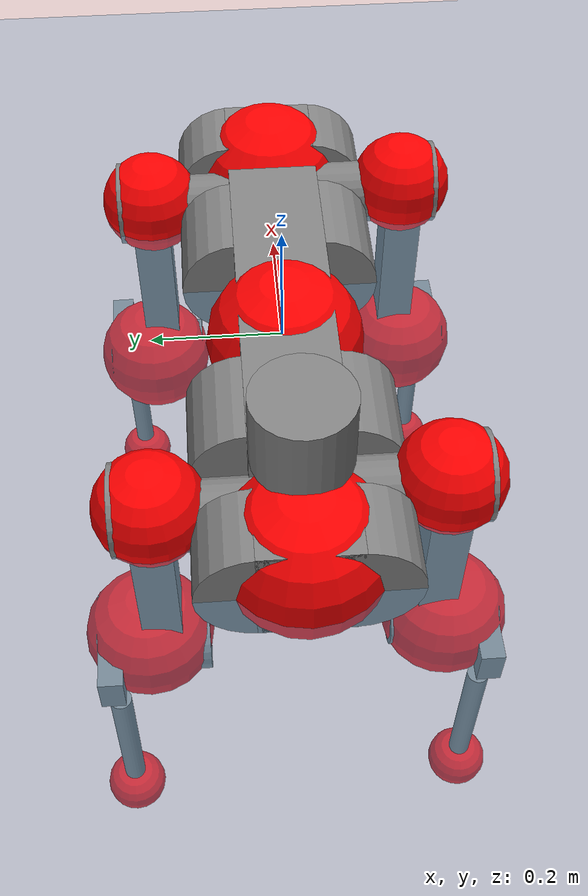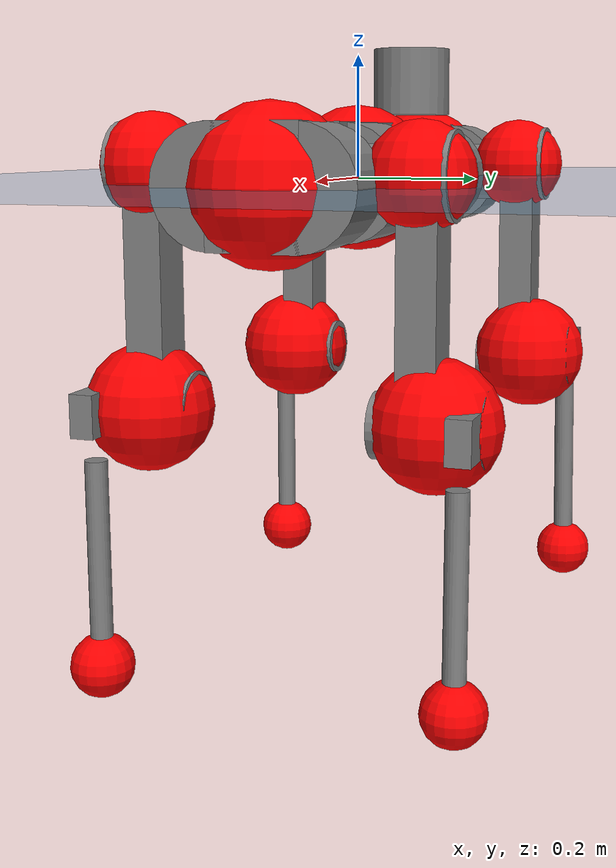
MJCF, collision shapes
<mujoco model="anymal_c">
  <compiler angle="radian" assetdir="assets" balanceinertia="true" inertiafromgeom="false"/>

  <option timestep="0.005" density="1.2" viscosity="2e-05"/>

  <size nkey="1"/>

  <visual>
    <quality shadowsize="8192"/>
    <map shadowclip="0.5"/>
  </visual>

  <default>
    <default class="/">
      <material specular="0" shininess="0.25"/>
      <geom contype="0" conaffinity="0" group="1" solref="-1000 -80"/>
      <site size="0.01 0.005 0.005" group="5"/>
      <general forcelimited="true" forcerange="-80 80" biastype="affine" gainprm="80" biasprm="0 -80 -2"/>
      <default class="anymal_c">
        <joint armature="0.01" damping="0.01" frictionloss="0.1"/>
        <default class="visual">
          <geom type="mesh" group="2"/>
          <default class="visual_zflip"/>
        </default>
        <default class="collision">
          <geom type="cylinder" group="3"/>
          <default class="foot">
            <geom size="0.03 0 0" type="sphere" condim="6" priority="1" friction="0.8 0.02 0.01" solimp="0.015 1 0.03"/>
          </default>
        </default>
      </default>
      <default class="reward_collision_sphere">
        <geom group="5" rgba="1 0 0 1"/>
      </default>
    </default>
  </default>

  <asset>
    <texture type="skybox" colorspace="auto" name="//unnamed_texture_0" builtin="gradient" rgb1="0.95 0.95 0.95" rgb2="0.95 0.95 0.95" width="100" height="600"/>
    <texture type="2d" colorspace="auto" name="texplane" builtin="checker" rgb1="0.345 0.575 0.748" rgb2="0.345 0.575 0.748" markrgb="1 1 1" width="512" height="512"/>
    <texture type="2d" colorspace="linear" name="base" file="base.png"/>
    <texture type="2d" colorspace="linear" name="top_shell" file="top_shell.png"/>
    <texture type="2d" colorspace="linear" name="bottom_shell" file="bottom_shell.png"/>
    <texture type="2d" colorspace="linear" name="remote" file="remote.png"/>
    <texture type="2d" colorspace="linear" name="hatch" file="hatch.png"/>
    <texture type="2d" colorspace="linear" name="handle" file="handle.png"/>
    <texture type="2d" colorspace="linear" name="face" file="face.png"/>
    <texture type="2d" colorspace="linear" name="battery" file="battery.png"/>
    <texture type="2d" colorspace="linear" name="lidar_cage" file="lidar_cage.png"/>
    <texture type="2d" colorspace="linear" name="depth_camera" file="depth_camera.png"/>
    <texture type="2d" colorspace="linear" name="wide_angle_camera" file="wide_angle_camera.png"/>
    <texture type="2d" colorspace="linear" name="lidar" file="lidar.png"/>
    <texture type="2d" colorspace="linear" name="drive" file="drive.png"/>
    <texture type="2d" colorspace="linear" name="hip_l" file="hip_l.png"/>
    <texture type="2d" colorspace="linear" name="shank_l" file="shank_l.png"/>
    <texture type="2d" colorspace="linear" name="foot" file="foot.png"/>
    <texture type="2d" colorspace="linear" name="thigh" file="thigh.png"/>
    <texture type="2d" colorspace="linear" name="shank_r" file="shank_r.png"/>
    <texture type="2d" colorspace="linear" name="hip_r" file="hip_r.png"/>
    <material name="MatPlane" class="/" texture="texplane" texuniform="true" texrepeat="2 2" specular="0.9" shininess="0.5"/>
    <material name="black_plastic" class="/" rgba="0.007 0.007 0.007 1"/>
    <material name="green" class="/" rgba="0.052 0.178 0.033 1"/>
    <material name="red" class="/" rgba="0.178 0.006 0.005 1"/>
    <material name="yellow" class="/" rgba="0.178 0.119 0.006 1"/>
    <material name="lwl" class="/" rgba="0.8 0.8 0.8 1"/>
    <material name="base" class="/" texture="base"/>
    <material name="top_shell" class="/" texture="top_shell"/>
    <material name="bottom_shell" class="/" texture="bottom_shell"/>
    <material name="hip_l" class="/" texture="hip_l"/>
    <material name="thigh" class="/" texture="thigh"/>
    <material name="shank_l" class="/" texture="shank_l"/>
    <material name="foot" class="/" texture="foot"/>
    <material name="hip_r" class="/" texture="hip_r"/>
    <material name="shank" class="/" texture="shank_r"/>
    <material name="hatch" class="/" texture="hatch"/>
    <material name="remote" class="/" texture="remote"/>
    <material name="handle" class="/" texture="handle"/>
    <material name="face" class="/" texture="face"/>
    <material name="depth_camera" class="/" texture="depth_camera"/>
    <material name="wide_angle_camera" class="/" texture="wide_angle_camera"/>
    <material name="battery" class="/" texture="battery"/>
    <material name="lidar_cage" class="/" texture="lidar_cage"/>
    <material name="lidar" class="/" texture="lidar"/>
    <material name="drive" class="/" texture="drive"/>
    <mesh name="base_0" class="/" file="base_0.obj"/>
    <mesh name="base_1" class="/" file="base_1.obj"/>
    <mesh name="base_2" class="/" file="base_2.obj"/>
    <mesh name="base_3" class="/" file="base_3.obj"/>
    <mesh name="base_4" class="/" file="base_4.obj"/>
    <mesh name="base_5" class="/" file="base_5.obj"/>
    <mesh name="top_shell" class="/" file="top_shell.obj"/>
    <mesh name="bottom_shell" class="/" file="bottom_shell.obj"/>
    <mesh name="remote" class="/" file="remote.obj"/>
    <mesh name="handle" class="/" file="handle.obj"/>
    <mesh name="face" class="/" file="face.obj"/>
    <mesh name="wide_angle_camera" class="/" file="wide_angle_camera.obj"/>
    <mesh name="depth_camera" class="/" file="depth_camera.obj"/>
    <mesh name="battery" class="/" file="battery.obj"/>
    <mesh name="lidar_cage" class="/" file="lidar_cage.obj"/>
    <mesh name="lidar" class="/" file="lidar.obj"/>
    <mesh name="drive" class="/" file="drive.obj"/>
    <mesh name="hip_l" class="/" file="hip_l.obj"/>
    <mesh name="thigh" class="/" file="thigh.obj"/>
    <mesh name="shank_l" class="/" file="shank_l.obj"/>
    <mesh name="foot" class="/" file="foot.obj"/>
    <mesh name="hip_r" class="/" file="hip_r.obj"/>
    <mesh name="hatch" class="/" file="hatch.obj"/>
    <mesh name="shank_r" class="/" file="shank_r.obj"/>
  </asset>

  <worldbody>
    <geom name="floor" class="/" size="100 100 0.125" type="plane" group="0" material="MatPlane"/>
    <light name="toplight_shadow" class="/" pos="0 0 5" dir="0.0990148 0.0990148 -0.990148" type="directional" ambient="0.04 0.04 0.04" diffuse="0.55 0.55 0.55" specular="0.12 0.12 0.12"/>
    <light name="toplight_fill" class="/" pos="0 0 5" dir="0.0990148 0.0990148 -0.990148" type="directional" castshadow="false" ambient="0.04 0.04 0.04" diffuse="0.3 0.3 0.3" specular="0.08 0.08 0.08"/>
    <body name="trunk" childclass="anymal_c" pos="-0.0106218 -0.00395002 -0.000604034" quat="1 -0.000162092 -0.000824237 0.000480126">
      <inertial pos="0.00156057 -0.0008341 0.0603134" quat="0.523684 0.493168 0.49673 0.485592" mass="19.8013" diaginertia="0.214909 0.304654 0.694004"/>
      <joint name="//unnamed_joint_0" type="free" armature="0" damping="0" frictionloss="0"/>
      <geom name="//unnamed_geom_1" class="visual" material="green" mesh="base_0"/>
      <geom name="//unnamed_geom_2" class="visual" material="yellow" mesh="base_1"/>
      <geom name="//unnamed_geom_3" class="visual" material="red" mesh="base_2"/>
      <geom name="//unnamed_geom_4" class="visual" material="black_plastic" mesh="base_3"/>
      <geom name="//unnamed_geom_5" class="visual" material="lwl" mesh="base_4"/>
      <geom name="//unnamed_geom_6" class="visual" material="base" mesh="base_5"/>
      <geom name="trunk_1" class="collision" size="0.292137 0.0705159 0.0906633" type="box"/>
      <geom name="trunk_2" class="collision" size="0.0906633 0.0730343" pos="0.184625 0.0633466 0" quat="0.707107 0 0.707107 0"/>
      <geom name="trunk_3" class="collision" size="0.0906633 0.0730343" pos="-0.184625 0.0633466 0" quat="0.707107 0 0.707107 0"/>
      <geom name="trunk_4" class="collision" size="0.0906633 0.0730343" pos="0.184625 -0.0633466 0" quat="0.707107 0 0.707107 0"/>
      <geom name="trunk_5" class="collision" size="0.0906633 0.0730343" pos="-0.184625 -0.0633466 0" quat="0.707107 0 0.707107 0"/>
      <geom name="//unnamed_geom_12" class="visual" material="top_shell" mesh="top_shell"/>
      <geom name="//unnamed_geom_13" class="visual" material="bottom_shell" mesh="bottom_shell"/>
      <geom name="//unnamed_geom_14" class="visual" material="remote" mesh="remote"/>
      <geom name="//unnamed_geom_15" class="visual" material="handle" mesh="handle"/>
      <geom name="//unnamed_geom_16" class="visual" pos="0.351848 0 0" quat="1 0 0 0" material="face" mesh="face"/>
      <geom name="trunk_6" class="collision" size="0.0554054 0.0705159 0.0906633" pos="0.398535 0 0" type="box"/>
      <geom name="//unnamed_geom_18" class="collision" size="0.0906633 0.0554054" pos="0.398535 0.0633466 0" quat="0.707107 0 0.707107 0"/>
      <geom name="//unnamed_geom_19" class="collision" size="0.0906633 0.0554054" pos="0.398535 -0.0633466 0" quat="0.707107 0 0.707107 0"/>
      <geom name="//unnamed_geom_20" class="visual" pos="0.391889 0 -0.0402225" quat="0.965926 0 0.258819 0" material="depth_camera" mesh="depth_camera"/>
      <geom name="//unnamed_geom_21" class="visual" pos="0.43546 0 0.0189866" material="wide_angle_camera" mesh="wide_angle_camera"/>
      <geom name="//unnamed_geom_22" class="visual_zflip" pos="-0.351848 0 0" quat="0 0 0 1" material="face" mesh="face"/>
      <geom name="trunk_7" class="collision" size="0.0554054 0.0705159 0.0906633" pos="-0.398535 0 0" quat="0 0 0 1" type="box"/>
      <geom name="//unnamed_geom_24" class="collision" size="0.0906633 0.0554054" pos="-0.398535 -0.0633466 0" quat="0 -0.707107 0 0.707107"/>
      <geom name="//unnamed_geom_25" class="collision" size="0.0906633 0.0554054" pos="-0.398535 0.0633466 0" quat="0 -0.707107 0 0.707107"/>
      <geom name="//unnamed_geom_26" class="visual" pos="-0.391889 0 -0.0402225" quat="0 -0.258819 0 0.965926" material="depth_camera" mesh="depth_camera"/>
      <geom name="//unnamed_geom_27" class="visual_zflip" pos="-0.43546 0 0.0189866" quat="0 0 0 1" material="wide_angle_camera" mesh="wide_angle_camera"/>
      <geom name="//unnamed_geom_28" class="visual" material="battery" mesh="battery"/>
      <geom name="//unnamed_geom_29" class="visual" pos="0 0.0699462 0.0336565" quat="0.683013 -0.183013 0.183013 0.683013" material="depth_camera" mesh="depth_camera"/>
      <geom name="//unnamed_geom_30" class="visual" pos="0 -0.0699462 0.0336565" quat="0.683013 0.183013 0.183013 -0.683013" material="depth_camera" mesh="depth_camera"/>
      <geom name="//unnamed_geom_31" class="visual" pos="-0.308981 0 0.0932207" quat="1 0 0 0" material="lidar_cage" mesh="lidar_cage"/>
      <geom name="trunk_8" class="collision" size="0.0705159 0.0604422" pos="-0.308981 0 0.169319"/>
      <geom name="//unnamed_geom_33" class="visual" pos="-0.308981 2.20412e-05 0.180353" quat="0.707107 0 0 -0.707107" material="lidar" mesh="lidar"/>
      <geom name="//unnamed_geom_34" class="visual" pos="0.25457 0.0942441 -6.26794e-09" quat="0.258819 0.965926 0 0" material="drive" mesh="drive"/>
      <geom name="//unnamed_geom_35" class="visual" pos="0.25457 -0.0942441 6.26794e-09" quat="0.258819 -0.965926 0 0" material="drive" mesh="drive"/>
      <geom name="//unnamed_geom_36" class="visual" pos="-0.25457 0.0942441 6.26794e-09" quat="0 0 0.965926 -0.258819" material="drive" mesh="drive"/>
      <geom name="//unnamed_geom_37" class="visual" pos="-0.25457 -0.0942441 -6.26794e-09" quat="0 0 -0.965926 -0.258819" material="drive" mesh="drive"/>
      <geom name="//unnamed_geom_38" class="visual" pos="0.0984666 0 0.0925865" quat="1 0 0 0" material="hatch" mesh="hatch"/>
      <geom name="//unnamed_geom_39" class="reward_collision_sphere" size="0.120884"/>
      <geom name="//unnamed_geom_40" class="reward_collision_sphere" size="0.120884" pos="0.381982 0 0"/>
      <geom name="//unnamed_geom_41" class="reward_collision_sphere" size="0.120884" pos="-0.381982 0 0"/>
      <site name="imu" pos="0.199274 0.00955494 0.119335" size="0.0100737"/>
      <camera name="track" pos="0 -1.8099 0" quat="0.707107 0.707107 0 0" mode="trackcom"/>
      <camera name="ego_camera" pos="0.381982 0 -0.0507323" quat="-0.5 -0.5 0.5 0.5"/>
      <body name="LF_HIP" pos="0.255614 0.0971399 0.00624383" quat="0.259887 0.965627 -0.00102061 0.00462475">
        <inertial pos="0.0596525 -0.00966997 -0.0118212" quat="-0.125879 0.710698 -0.141424 0.677542" mass="2.85659" diaginertia="0.00258995 0.00323814 0.0106658"/>
        <joint name="LF_HAA" pos="0 0 0" axis="0.997727 -0.0219176 -0.0637236" stiffness="0.0535412" range="-0.731117 0.489002" armature="0.0158205" damping="0.00193723" frictionloss="0.0746066"/>
        <geom name="//unnamed_geom_42" class="visual" pos="0 -0.000368715 6.05611e-05" quat="0.258819 -0.965926 0 0" material="hip_l" mesh="hip_l"/>
        <geom name="//unnamed_geom_43" class="visual" pos="0.0508461 -0.0624786 -0.0387596" quat="0.183013 -0.683013 0.683013 0.183013" material="drive" mesh="drive"/>
        <geom name="//unnamed_geom_44" class="collision" size="0.0503685 0.0705159" pos="0.0508461 -0.010823 -0.00875767" quat="-0.353553 -0.612372 0.612372 -0.353553"/>
        <body name="LF_THIGH" pos="0.0579013 -0.0671343 -0.0472164" quat="0.18279 -0.682105 0.683443 0.185003">
          <inertial pos="0.0255986 0.000183533 -0.298971" quat="0.993698 -0.0279142 -0.0711977 0.0819466" mass="3.30753" diaginertia="0.0141043 0.0189945 0.014073"/>
          <joint name="LF_HFE" pos="0 0 0" axis="0.999594 -0.00230461 -0.028392" stiffness="0.0336656" range="-3.22816 3.14706" armature="0.00481035" damping="0.0357385" frictionloss="0.132124"/>
          <geom name="//unnamed_geom_45" class="visual" pos="-0.00111622 -1.7589e-06 0" quat="0.707107 0 0 -0.707107" material="thigh" mesh="thigh"/>
          <geom name="//unnamed_geom_46" class="collision" size="0.0654791 0.0402948" pos="0.033954 0 0" quat="0.5 0.5 -0.5 -0.5"/>
          <geom name="//unnamed_geom_47" class="collision" size="0.0377764 0.0302211 0.142356" pos="0.0254655 0 -0.17923" quat="0.707107 0 0 -0.707107" type="box"/>
          <geom name="//unnamed_geom_48" class="visual" pos="0.0851396 0 -0.361468" quat="1 0 0 0" material="drive" mesh="drive"/>
          <geom name="//unnamed_geom_49" class="collision" size="0.0503685 0.0705159" pos="0.0257201 0 -0.361468" quat="0.707107 0 0.707107 0"/>
          <geom name="//unnamed_geom_50" class="reward_collision_sphere" size="0.0805896" pos="0.0212212 0 0"/>
          <body name="LF_SHANK" pos="0.0868652 0.0130096 -0.359249" quat="0.999992 -0.00199282 0.00133232 0.00318358">
            <inertial pos="-0.00041671 -0.0536331 -0.103268" quat="0.989346 -0.119864 0.00214192 -0.0826002" mass="0.506409" diaginertia="0.00455069 0.00523169 0.00378232"/>
            <joint name="LF_KFE" pos="0 0 0" axis="0.999858 0.0127047 -0.011071" range="-3.11314 3.15347" armature="0.0103496" damping="0.0444377" frictionloss="0.101912"/>
            <geom name="//unnamed_geom_51" class="visual" pos="-0.000363975 -0.00194073 0" quat="0.707107 0 0 -0.707107" material="shank_l" mesh="shank_l"/>
            <geom name="LF_kfe_act" class="collision" size="0.0604422 0.0201474" pos="0.016977 0 0" quat="0.5 0.5 -0.5 -0.5"/>
            <geom name="//unnamed_geom_53" class="collision" size="0.0579228 0.0339987 0.01914" pos="0.016977 -0.0520338 0" quat="0.5 0.5 -0.5 -0.5" type="box"/>
            <geom name="//unnamed_geom_54" class="visual" pos="0.0110776 -0.080216 -0.42865" quat="0.382683 0 0 -0.92388" material="foot" mesh="foot"/>
            <geom name="LF_calf" class="collision" size="0.017629 0.142293" pos="0.0110775 -0.0795905 -0.214325" quat="0.707107 0 0 -0.707107"/>
            <geom name="LF_foot" class="foot" size="0.0213277" pos="0.0110775 -0.0795905 -0.400113" quat="0.707107 0 0 -0.707107"/>
            <geom name="//unnamed_geom_57" class="reward_collision_sphere" size="0.100737" pos="-0.0424425 0 0"/>
            <geom name="//unnamed_geom_58" class="reward_collision_sphere" size="0.0503685" pos="0.0110775 -0.0795905 -0.400113"/>
            <site name="LF_foot" class="foot" pos="0.0110775 -0.0795905 -0.400113" quat="0.707107 0 0 -0.707107" size="0.0100737"/>
          </body>
        </body>
      </body>
      <body name="RF_HIP" pos="0.267339 -0.106399 0.00936919" quat="0.258668 -0.965966 0.00048166 0.000458006">
        <inertial pos="0.0358057 0.0115199 0.000627119" quat="0.145426 0.699481 0.135083 0.686535" mass="2.40637" diaginertia="0.0021774 0.00277487 0.00916894"/>
        <joint name="RF_HAA" pos="0 0 0" axis="0.998652 0.033086 0.0400037" stiffness="0.00124124" range="-0.262675 0.715393" armature="0.0110441" damping="0.0102565" frictionloss="0.149466"/>
        <geom name="//unnamed_geom_59" class="visual" pos="0 0.000368712 6.05609e-05" quat="0.258819 0.965926 0 0" material="hip_r" mesh="hip_r"/>
        <geom name="//unnamed_geom_60" class="visual" pos="0.0508461 0.0624786 -0.0387596" quat="0.183013 0.683013 0.683013 -0.183013" material="drive" mesh="drive"/>
        <geom name="//unnamed_geom_61" class="collision" size="0.0503685 0.0705159" pos="0.0508461 0.010823 -0.00875767" quat="-0.353553 0.612372 0.612372 0.353553"/>
        <body name="RF_THIGH" pos="0.0507667 0.0683528 -0.0595153" quat="0.182502 0.682297 0.683983 -0.182568">
          <inertial pos="0.031656 -0.0134991 -0.313955" quat="0.99321 -0.00459323 -0.078317 0.0859018" mass="3.02266" diaginertia="0.0131115 0.0172595 0.0132468"/>
          <joint name="RF_HFE" pos="0 0 0" axis="0.999486 -0.0219246 -0.0233772" range="-3.13689 3.03286" armature="0.011453" damping="0.0464868" frictionloss="0.0946186"/>
          <geom name="//unnamed_geom_62" class="visual" pos="-0.00111622 -1.7589e-06 0" quat="0.707107 0 0 -0.707107" material="thigh" mesh="thigh"/>
          <geom name="//unnamed_geom_63" class="collision" size="0.0654791 0.0402948" pos="0.033954 0 0" quat="0.5 0.5 0.5 0.5"/>
          <geom name="//unnamed_geom_64" class="collision" size="0.0377764 0.0302211 0.142356" pos="0.0254655 0 -0.17923" quat="0.707107 0 0 0.707107" type="box"/>
          <geom name="//unnamed_geom_65" class="visual" pos="0.0851396 0 -0.361468" quat="1 0 0 0" material="drive" mesh="drive"/>
          <geom name="//unnamed_geom_66" class="collision" size="0.0503685 0.0705159" pos="0.0257201 0 -0.361468" quat="0.707107 0 0.707107 0"/>
          <geom name="//unnamed_geom_67" class="reward_collision_sphere" size="0.0805896" pos="0.0212212 0 0"/>
          <body name="RF_SHANK" pos="0.0814304 -0.00258225 -0.371328" quat="0.999981 1.83644e-06 0.000162877 0.00623759">
            <inertial pos="-0.00902372 0.0626222 -0.111954" quat="0.993341 0.113243 -0.00187069 0.0211026" mass="0.679884" diaginertia="0.00420575 0.00494143 0.00312298"/>
            <joint name="RF_KFE" pos="0 0 0" axis="0.99991 -0.00041612 -0.0134325" range="-2.90681 3.12572" armature="0.00983613" damping="0" frictionloss="0.0483949"/>
            <geom name="//unnamed_geom_68" class="visual" pos="-0.000363973 0.00194073 0" quat="0.707107 0 0 0.707107" material="shank" mesh="shank_r"/>
            <geom name="RF_kfe_act" class="collision" size="0.0604422 0.0201474" pos="0.016977 0 0" quat="0.5 0.5 0.5 0.5"/>
            <geom name="//unnamed_geom_70" class="collision" size="0.0579228 0.0339987 0.01914" pos="0.016977 0.0520338 0" quat="0.5 0.5 0.5 0.5" type="box"/>
            <geom name="//unnamed_geom_71" class="visual" pos="0.0110774 0.080216 -0.42865" quat="0.382683 0 0 0.92388" material="foot" mesh="foot"/>
            <geom name="RF_calf" class="collision" size="0.017629 0.142293" pos="0.0110775 0.0795905 -0.214325" quat="0.707107 0 0 0.707107"/>
            <geom name="RF_foot" class="foot" size="0.0319836" pos="0.0110775 0.0795905 -0.400113" quat="0.707107 0 0 0.707107"/>
            <geom name="//unnamed_geom_74" class="reward_collision_sphere" size="0.100737" pos="-0.0424425 0 0"/>
            <geom name="//unnamed_geom_75" class="reward_collision_sphere" size="0.0503685" pos="0.0110775 0.0795905 -0.400113"/>
            <site name="RF_foot" class="foot" pos="0.0110775 0.0795905 -0.400113" quat="0.707107 0 0 0.707107" size="0.0100737"/>
          </body>
        </body>
      </body>
      <body name="LH_HIP" pos="-0.268474 0.104447 0.00243479" quat="0.000601869 0.000595417 0.966201 -0.257789">
        <inertial pos="0.0364202 0.0271664 -0.00921378" quat="0.174772 0.658148 0.108037 0.724309" mass="2.9739" diaginertia="0.00261045 0.0029629 0.0119386"/>
        <joint name="LH_HAA" pos="0 0 0" axis="0.999733 0.0230639 0.00163195" range="-0.644839 0.642797" armature="0.0100189" damping="0.00793917" frictionloss="0.117664"/>
        <geom name="//unnamed_geom_76" class="visual" pos="0 0.000368712 6.05609e-05" quat="-0.258819 -0.965926 0 0" material="hip_r" mesh="hip_r"/>
        <geom name="//unnamed_geom_77" class="visual" pos="0.0508461 0.0624786 -0.0387596" quat="0.183013 0.683013 0.683013 -0.183013" material="drive" mesh="drive"/>
        <geom name="//unnamed_geom_78" class="collision" size="0.0503685 0.0705159" pos="0.0508461 0.010823 -0.00875767" quat="-0.353553 0.612372 0.612372 0.353553"/>
        <body name="LH_THIGH" pos="0.0448769 0.061583 -0.0545128" quat="0.184066 0.683852 0.68181 -0.183307">
          <inertial pos="0.0246437 -0.0120618 -0.310641" quat="0.987479 0.0106825 -0.0923543 0.127444" mass="2.76843" diaginertia="0.0131082 0.0164676 0.0143521"/>
          <joint name="LH_HFE" pos="0 0 0" axis="0.998478 0.032323 0.0446894" stiffness="0.0403261" range="-3.29442 3.00128" armature="0.00457475" damping="0" frictionloss="0.0515489"/>
          <geom name="//unnamed_geom_79" class="visual" pos="-0.00111622 -1.7589e-06 0" quat="0.707107 0 0 -0.707107" material="thigh" mesh="thigh"/>
          <geom name="//unnamed_geom_80" class="collision" size="0.0654791 0.0402948" pos="0.033954 0 0" quat="0.5 0.5 -0.5 -0.5"/>
          <geom name="//unnamed_geom_81" class="collision" size="0.0377764 0.0302211 0.142356" pos="0.0254655 0 -0.17923" quat="0.707107 0 0 -0.707107" type="box"/>
          <geom name="//unnamed_geom_82" class="visual" pos="0.0851396 0 -0.361468" quat="1 0 0 0" material="drive" mesh="drive"/>
          <geom name="//unnamed_geom_83" class="collision" size="0.0503685 0.0705159" pos="0.0257201 0 -0.361468" quat="0.707107 0 0.707107 0"/>
          <geom name="//unnamed_geom_84" class="reward_collision_sphere" size="0.0805896" pos="0.0212212 0 0"/>
          <body name="LH_SHANK" pos="0.0919496 -0.00948928 -0.348586" quat="0.999979 -0.00196735 -0.00614357 -0.000645563">
            <inertial pos="0.00482728 0.0556493 -0.11608" quat="0.993426 0.107987 0.027127 0.0266111" mass="0.69654" diaginertia="0.00448396 0.00604546 0.0037983"/>
            <joint name="LH_KFE" pos="0 0 0" axis="0.999802 -0.0126119 0.0153839" stiffness="0.0241207" range="-3.17963 3.28027" armature="0.00911949" damping="0.0198946" frictionloss="0.145492"/>
            <geom name="//unnamed_geom_85" class="visual" pos="-0.000363973 0.00194073 0" quat="-0.707107 0 0 -0.707107" material="shank" mesh="shank_r"/>
            <geom name="LH_kfe_act" class="collision" size="0.0604422 0.0201474" pos="0.016977 0 0" quat="0.5 0.5 -0.5 -0.5"/>
            <geom name="//unnamed_geom_87" class="collision" size="0.0579228 0.0339987 0.01914" pos="0.016977 0.0520338 0" quat="0.5 0.5 -0.5 -0.5" type="box"/>
            <geom name="//unnamed_geom_88" class="visual" pos="0.0110774 0.080216 -0.42865" quat="-0.382683 0 0 -0.92388" material="foot" mesh="foot"/>
            <geom name="LH_calf" class="collision" size="0.017629 0.142293" pos="0.0110775 0.0795905 -0.214325" quat="0.707107 0 0 -0.707107"/>
            <geom name="LH_foot" class="foot" size="0.0407675" pos="0.0110775 0.0795905 -0.400113" quat="0.707107 0 0 -0.707107"/>
            <geom name="//unnamed_geom_91" class="reward_collision_sphere" size="0.100737" pos="-0.0424425 0 0"/>
            <geom name="//unnamed_geom_92" class="reward_collision_sphere" size="0.0503685" pos="0.0110775 0.0795905 -0.400113"/>
            <site name="LH_foot" class="foot" pos="0.0110775 0.0795905 -0.400113" quat="0.707107 0 0 -0.707107" size="0.0100737"/>
          </body>
        </body>
      </body>
      <body name="RH_HIP" pos="-0.242754 -0.098608 -0.000138486" quat="0.000909099 0.000886361 -0.965625 -0.259935">
        <inertial pos="0.0399278 -0.0195612 -0.00974357" quat="-0.10522 0.691102 -0.0925977 0.709036" mass="2.87829" diaginertia="0.00241085 0.00275157 0.0100058"/>
        <joint name="RH_HAA" pos="0 0 0" axis="0.998089 -0.0520085 -0.0333738" stiffness="0.00317165" range="-0.711704 0.428537" armature="0.0122038" damping="0" frictionloss="0.107581"/>
        <geom name="//unnamed_geom_93" class="visual" pos="0 -0.000368715 6.05611e-05" quat="-0.258819 0.965926 0 0" material="hip_l" mesh="hip_l"/>
        <geom name="//unnamed_geom_94" class="visual" pos="0.0508461 -0.0624786 -0.0387596" quat="-0.183013 0.683013 -0.683013 -0.183013" material="drive" mesh="drive"/>
        <geom name="//unnamed_geom_95" class="collision" size="0.0503685 0.0705159" pos="0.0508461 -0.010823 -0.00875767" quat="0.353553 0.612372 -0.612372 0.353553"/>
        <body name="RH_THIGH" pos="0.0509204 -0.0636863 -0.063732" quat="-0.184776 0.683208 -0.682322 -0.183089">
          <inertial pos="0.0240625 -0.000876878 -0.314379" quat="0.98843 -0.0607502 -0.0735363 0.117928" mass="3.27385" diaginertia="0.0133881 0.0162572 0.0116612"/>
          <joint name="RH_HFE" pos="0 0 0" axis="0.999926 -0.0114365 0.00419929" stiffness="0.0398071" range="-3.11187 3.071" armature="0.00566211" damping="0.056364" frictionloss="0.127554"/>
          <geom name="//unnamed_geom_96" class="visual" pos="-0.00111622 -1.7589e-06 0" quat="0.707107 0 0 -0.707107" material="thigh" mesh="thigh"/>
          <geom name="//unnamed_geom_97" class="collision" size="0.0654791 0.0402948" pos="0.033954 0 0" quat="0.5 0.5 0.5 0.5"/>
          <geom name="//unnamed_geom_98" class="collision" size="0.0377764 0.0302211 0.142356" pos="0.0254655 0 -0.17923" quat="0.707107 0 0 0.707107" type="box"/>
          <geom name="//unnamed_geom_99" class="visual" pos="0.0851396 0 -0.361468" quat="1 0 0 0" material="drive" mesh="drive"/>
          <geom name="//unnamed_geom_100" class="collision" size="0.0503685 0.0705159" pos="0.0257201 0 -0.361468" quat="0.707107 0 0.707107 0"/>
          <geom name="//unnamed_geom_101" class="reward_collision_sphere" size="0.0805896" pos="0.0212212 0 0"/>
          <body name="RH_SHANK" pos="0.0884106 -0.00179531 -0.362108" quat="1 0.000278645 0.000123771 -5.77276e-05">
            <inertial pos="0.0150911 -0.0428981 -0.113985" quat="0.992982 -0.116192 0.000875768 -0.0220531" mass="0.526558" diaginertia="0.00488115 0.00488647 0.00370937"/>
            <joint name="RH_KFE" pos="0 0 0" axis="0.999902 0.0140119 0.000399269" stiffness="0.00295303" range="-3.06877 2.90573" armature="0.0102755" damping="0" frictionloss="0.0405133"/>
            <geom name="//unnamed_geom_102" class="visual" pos="-0.000363975 -0.00194073 0" quat="0.707107 0 0 -0.707107" material="shank_l" mesh="shank_l"/>
            <geom name="RH_kfe_act" class="collision" size="0.0604422 0.0201474" pos="0.016977 0 0" quat="0.5 0.5 0.5 0.5"/>
            <geom name="//unnamed_geom_104" class="collision" size="0.0579228 0.0339987 0.01914" pos="0.016977 -0.0520338 0" quat="0.5 0.5 0.5 0.5" type="box"/>
            <geom name="//unnamed_geom_105" class="visual" pos="0.0110776 -0.080216 -0.42865" quat="0.382683 0 0 -0.92388" material="foot" mesh="foot"/>
            <geom name="RH_calf" class="collision" size="0.017629 0.142293" pos="0.0110775 -0.0795905 -0.214325" quat="0.707107 0 0 0.707107"/>
            <geom name="RH_foot" class="foot" size="0.0172747" pos="0.0110775 -0.0795905 -0.400113" quat="0.707107 0 0 0.707107"/>
            <geom name="//unnamed_geom_108" class="reward_collision_sphere" size="0.100737" pos="-0.0424425 0 0"/>
            <geom name="//unnamed_geom_109" class="reward_collision_sphere" size="0.0503685" pos="0.0110775 -0.0795905 -0.400113"/>
            <site name="RH_foot" class="foot" pos="0.0110775 -0.0795905 -0.400113" quat="0.707107 0 0 0.707107" size="0.0100737"/>
          </body>
        </body>
      </body>
    </body>
  </worldbody>

  <contact>
    <pair class="/" geom1="floor" geom2="LF_foot" name="//unnamed_contact_0"/>
    <pair class="/" geom1="floor" geom2="RF_foot" name="//unnamed_contact_1"/>
    <pair class="/" geom1="floor" geom2="LH_foot" name="//unnamed_contact_2"/>
    <pair class="/" geom1="floor" geom2="RH_foot" name="//unnamed_contact_3"/>
  </contact>

  <actuator>
    <general name="LF_HAA" class="/" joint="LF_HAA" forcerange="-83.3254 83.3254" gainprm="77.3007" biasprm="0 -77.3007 -1.87358"/>
    <general name="LF_HFE" class="/" joint="LF_HFE" forcerange="-110.004 110.004" gainprm="77.3007" biasprm="0 -77.3007 -1.87358"/>
    <general name="LF_KFE" class="/" joint="LF_KFE" forcerange="-67.3007 67.3007" gainprm="77.3007" biasprm="0 -77.3007 -1.87358"/>
    <general name="RF_HAA" class="/" joint="RF_HAA" forcerange="-86.9214 86.9214" gainprm="77.3007" biasprm="0 -77.3007 -1.87358"/>
    <general name="RF_HFE" class="/" joint="RF_HFE" forcerange="-80.4627 80.4627" gainprm="77.3007" biasprm="0 -77.3007 -1.87358"/>
    <general name="RF_KFE" class="/" joint="RF_KFE" forcerange="-61.015 61.015" gainprm="77.3007" biasprm="0 -77.3007 -1.87358"/>
    <general name="LH_HAA" class="/" joint="LH_HAA" forcerange="-84.5431 84.5431" gainprm="77.3007" biasprm="0 -77.3007 -1.87358"/>
    <general name="LH_HFE" class="/" joint="LH_HFE" forcerange="-59.9637 59.9637" gainprm="77.3007" biasprm="0 -77.3007 -1.87358"/>
    <general name="LH_KFE" class="/" joint="LH_KFE" forcerange="-98.9719 98.9719" gainprm="77.3007" biasprm="0 -77.3007 -1.87358"/>
    <general name="RH_HAA" class="/" joint="RH_HAA" forcerange="-78.7546 78.7546" gainprm="77.3007" biasprm="0 -77.3007 -1.87358"/>
    <general name="RH_HFE" class="/" joint="RH_HFE" forcerange="-72.0762 72.0762" gainprm="77.3007" biasprm="0 -77.3007 -1.87358"/>
    <general name="RH_KFE" class="/" joint="RH_KFE" forcerange="-119.823 119.823" gainprm="77.3007" biasprm="0 -77.3007 -1.87358"/>
  </actuator>

  <sensor>
    <gyro site="imu" name="imu_angular_velocity"/>
    <velocimeter site="imu" name="imu_linear_velocity"/>
    <framelinvel objtype="site" objname="LF_foot" name="LF_foot_global_linear_velocity"/>
    <framelinvel objtype="site" objname="RF_foot" name="RF_foot_global_linear_velocity"/>
    <framelinvel objtype="site" objname="LH_foot" name="LH_foot_global_linear_velocity"/>
    <framelinvel objtype="site" objname="RH_foot" name="RH_foot_global_linear_velocity"/>
  </sensor>

  <keyframe>
    <key name="home" qpos="0 0 0.55 1 0 0 0 0 0.4 -0.8 0 -0.4 0.8 0 -0.4 0.8 0 0.4 -0.8"/>
  </keyframe>
</mujoco>
